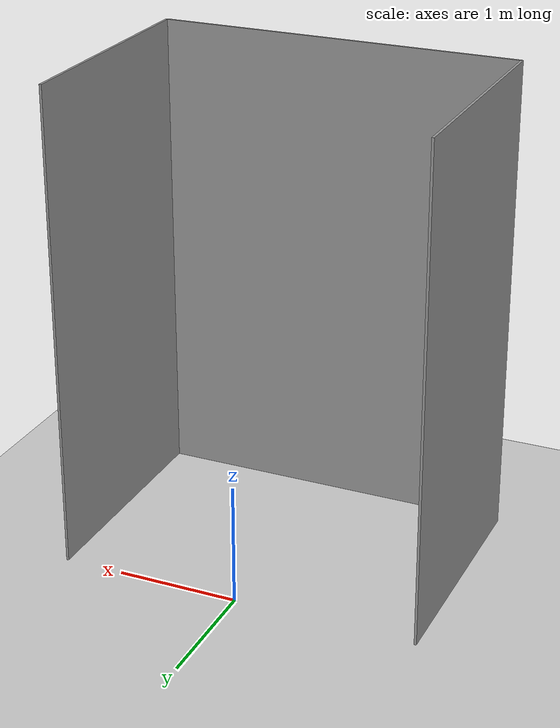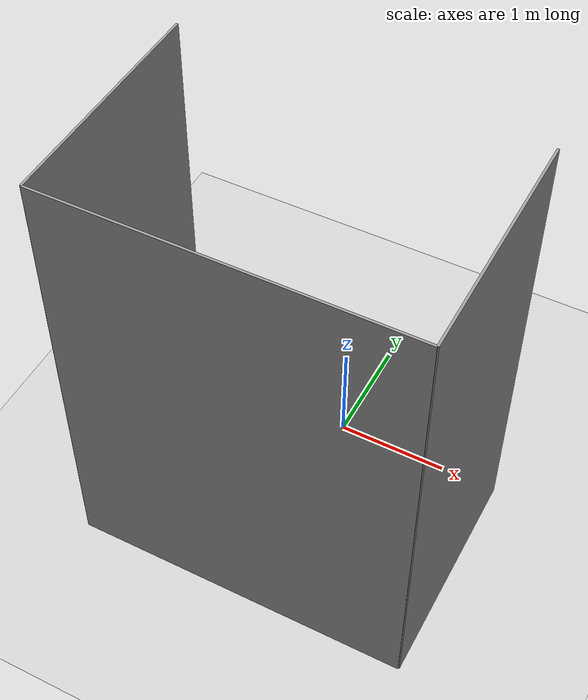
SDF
<sdf version="1.6">
 <world name="default">
  <light name="sun" type="directional">
   <pose>0 0 10 0 -0 0</pose>
   <diffuse>0.8 0.8 0.8 1</diffuse>
   <specular>0.2 0.2 0.2 1</specular>
   <attenuation>
    <range>1000</range>
    <constant>0.9</constant>
    <linear>0.01</linear>
    <quadratic>0.001</quadratic>
   </attenuation>
   <direction>-0.5 0.1 -0.9</direction>
  </light>
  <model name="ground_plane">
   <static>1</static>
   <link name="link">
    <collision name="collision">
     <geometry><plane><normal>0 0 1</normal><size>200 200</size></plane></geometry>
     <surface><friction><ode><mu>100</mu><mu2>50</mu2></ode></friction></surface>
    </collision>
    <visual name="visual">
     <cast_shadows>0</cast_shadows>
     <geometry><plane><normal>0 0 1</normal><size>200 200</size></plane></geometry>
     <material>
      <script><uri>file://media/materials/scripts/gazebo.material</uri><name>Gazebo/Grey</name></script>
     </material>
    </visual>
   </link>
   <pose>0 100 0 0 -0 0</pose>
  </model>
  <gravity>0 0 -9.8</gravity>
  <magnetic_field>6e-06 2.3e-05 -4.2e-05</magnetic_field>
  <atmosphere type="adiabatic"/>
  <physics name="default_physics" default="0" type="ode">
   <max_step_size>0.001</max_step_size>
   <real_time_factor>1</real_time_factor>
   <real_time_update_rate>1000</real_time_update_rate>
  </physics>
  <scene><ambient>0.4 0.4 0.4 1</ambient><background>0.7 0.7 0.7 1</background><shadows>0</shadows></scene>
  <spherical_coordinates>
   <surface_model>EARTH_WGS84</surface_model>
   <latitude_deg>0</latitude_deg>
   <longitude_deg>0</longitude_deg>
   <elevation>0</elevation>
   <heading_deg>0</heading_deg>
  </spherical_coordinates>
  <model name="wall_back">
   <static>1</static>
   <pose>0.0 -2 2 0.0 0 0.0</pose>
   <link name="link">
    <collision name="collision"><geometry><box><size>3 0.02 4</size></box></geometry></collision>
    <visual name="visual">
     <material>
      <script><name>Gazebo/Grey</name><uri>file://media/materials/scripts/gazebo.material</uri></script>
     </material>
     <geometry><box><size>3 0.02 4</size></box></geometry>
    </visual>
   </link>
  </model>
  <model name="wall_left">
   <static>1</static>
   <pose>1.5 -1 2 0 0 0.00</pose>
   <link name="link">
    <collision name="collision"><geometry><box><size>0.02 2 4</size></box></geometry></collision>
    <visual name="visual">
     <material>
      <script><name>Gazebo/Grey</name><uri>file://media/materials/scripts/gazebo.material</uri></script>
     </material>
     <geometry><box><size>0.02 2 4</size></box></geometry>
    </visual>
   </link>
  </model>
  <model name="wall_right">
   <static>1</static>
   <pose>-1.5 -1 2 0 0 0.00</pose>
   <link name="link">
    <collision name="collision"><geometry><box><size>0.02 2 4</size></box></geometry></collision>
    <visual name="visual">
     <material>
      <script><name>Gazebo/Grey</name><uri>file://media/materials/scripts/gazebo.material</uri></script>
     </material>
     <geometry><box><size>0.02 2 4</size></box></geometry>
    </visual>
   </link>
  </model>
 </world>
</sdf>
